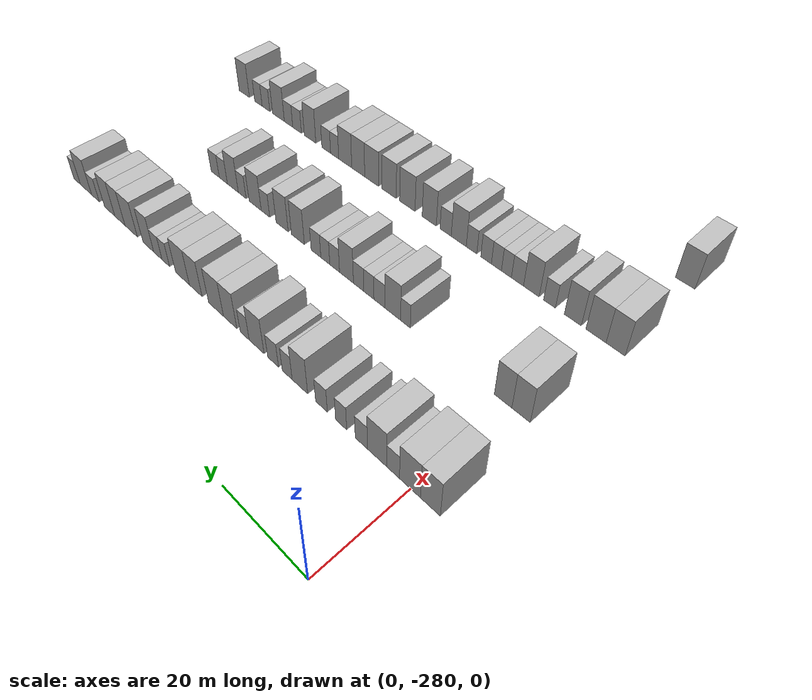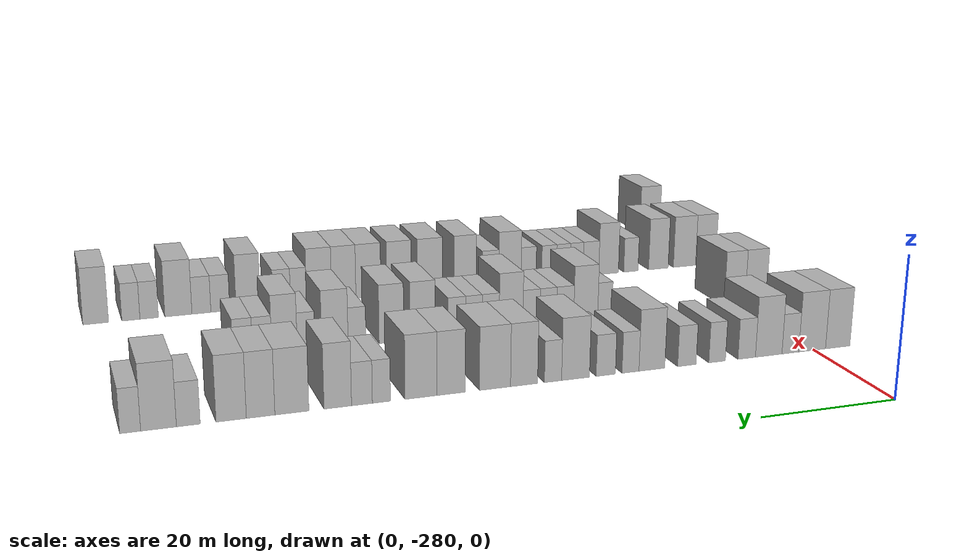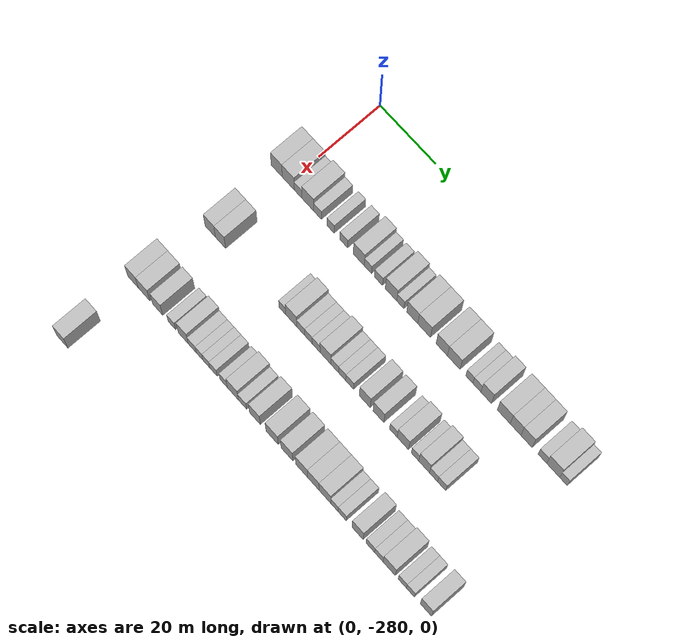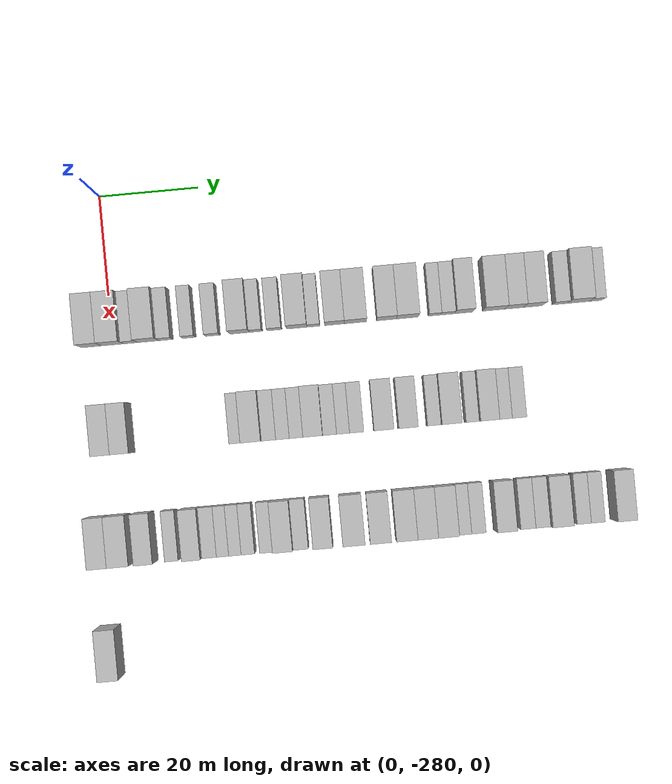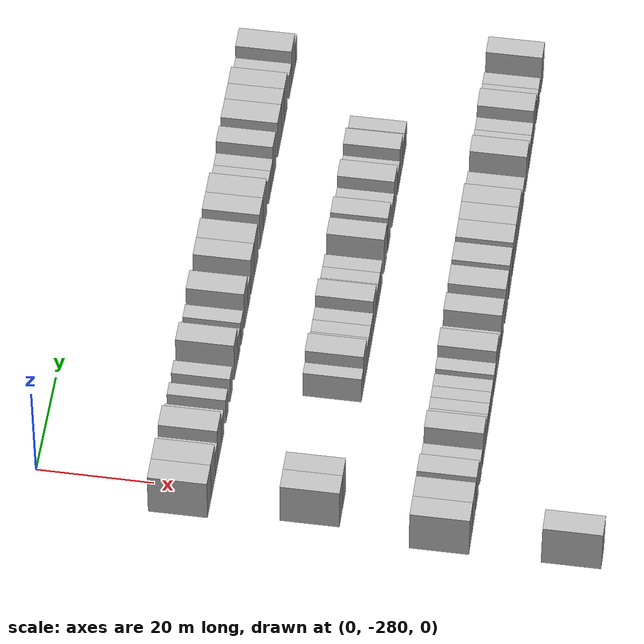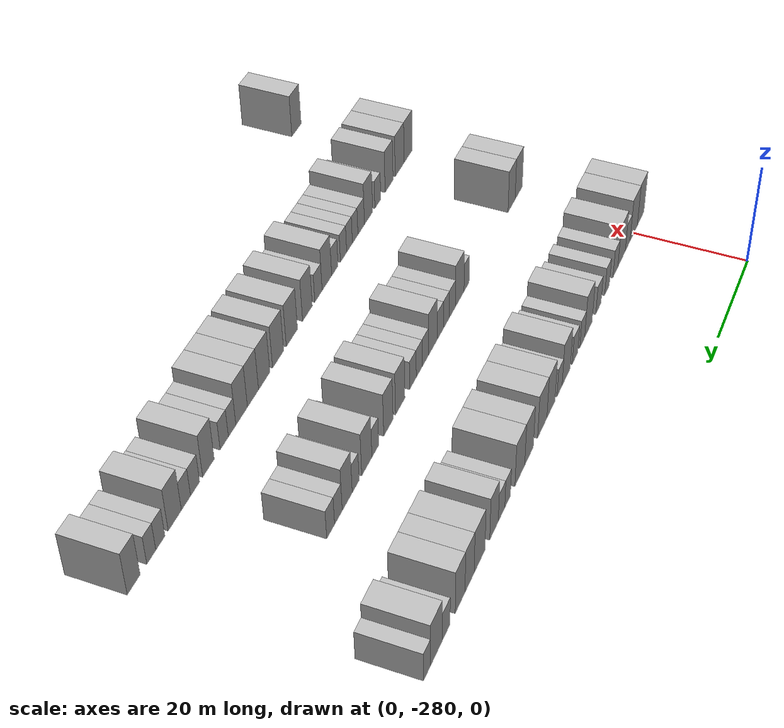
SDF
<sdf version="1.6">
 <world name="default">
  <model name="building_25">
   <static>1</static>
   <pose>25.0000 -284.0608 0 0.000000 0.000000 0.000000</pose>
   <link name="link">
    <pose>0 0 4.50 0 0 0</pose>
    <collision name="collision"><geometry><box><size>10.0000 4.0762 9.0000</size></box></geometry></collision>
    <visual name="visual">
     <cast_shadows>0</cast_shadows>
     <geometry><box><size>10.0000 4.0762 9.0000</size></box></geometry>
     <material>
      <script>
       <uri>model://HANNAS_wall/materials/scripts</uri>
       <uri>model://HANNAS_wall/materials/textures</uri>
       <name>vrc/HANNAS_wall</name>
      </script>
     </material>
    </visual>
   </link>
  </model>
  <model name="building_26">
   <static>1</static>
   <pose>25.0000 -279.8087 0 0.000000 0.000000 0.000000</pose>
   <link name="link">
    <pose>0 0 4.50 0 0 0</pose>
    <collision name="collision"><geometry><box><size>10.0000 4.4280 9.0000</size></box></geometry></collision>
    <visual name="visual">
     <cast_shadows>0</cast_shadows>
     <geometry><box><size>10.0000 4.4280 9.0000</size></box></geometry>
     <material>
      <script>
       <uri>model://HANNAS_wall/materials/scripts</uri>
       <uri>model://HANNAS_wall/materials/textures</uri>
       <name>vrc/HANNAS_wall</name>
      </script>
     </material>
    </visual>
   </link>
  </model>
  <model name="building_27">
   <static>1</static>
   <pose>25.0000 -276.2151 0 0.000000 0.000000 0.000000</pose>
   <link name="link">
    <pose>0 0 3.00 0 0 0</pose>
    <collision name="collision"><geometry><box><size>10.0000 2.7592 6.0000</size></box></geometry></collision>
    <visual name="visual">
     <cast_shadows>0</cast_shadows>
     <geometry><box><size>10.0000 2.7592 6.0000</size></box></geometry>
     <material>
      <script>
       <uri>model://HANNAS_wall/materials/scripts</uri>
       <uri>model://HANNAS_wall/materials/textures</uri>
       <name>vrc/HANNAS_wall</name>
      </script>
     </material>
    </visual>
   </link>
  </model>
  <model name="building_28">
   <static>1</static>
   <pose>25.0000 -272.6816 0 0.000000 0.000000 0.000000</pose>
   <link name="link">
    <pose>0 0 4.50 0 0 0</pose>
    <collision name="collision"><geometry><box><size>10.0000 4.3078 9.0000</size></box></geometry></collision>
    <visual name="visual">
     <cast_shadows>0</cast_shadows>
     <geometry><box><size>10.0000 4.3078 9.0000</size></box></geometry>
     <material>
      <script>
       <uri>model://HANNAS_wall/materials/scripts</uri>
       <uri>model://HANNAS_wall/materials/textures</uri>
       <name>vrc/HANNAS_wall</name>
      </script>
     </material>
    </visual>
   </link>
  </model>
  <model name="building_29">
   <static>1</static>
   <pose>25.0000 -269.1227 0 0.000000 0.000000 0.000000</pose>
   <link name="link">
    <pose>0 0 3.00 0 0 0</pose>
    <collision name="collision"><geometry><box><size>10.0000 2.8099 6.0000</size></box></geometry></collision>
    <visual name="visual">
     <cast_shadows>0</cast_shadows>
     <geometry><box><size>10.0000 2.8099 6.0000</size></box></geometry>
     <material>
      <script>
       <uri>model://HANNAS_wall/materials/scripts</uri>
       <uri>model://HANNAS_wall/materials/textures</uri>
       <name>vrc/HANNAS_wall</name>
      </script>
     </material>
    </visual>
   </link>
  </model>
  <model name="building_30">
   <static>1</static>
   <pose>25.0000 -264.4025 0 0.000000 0.000000 0.000000</pose>
   <link name="link">
    <pose>0 0 3.00 0 0 0</pose>
    <collision name="collision"><geometry><box><size>10.0000 2.6304 6.0000</size></box></geometry></collision>
    <visual name="visual">
     <cast_shadows>0</cast_shadows>
     <geometry><box><size>10.0000 2.6304 6.0000</size></box></geometry>
     <material>
      <script>
       <uri>model://HANNAS_wall/materials/scripts</uri>
       <uri>model://HANNAS_wall/materials/textures</uri>
       <name>vrc/HANNAS_wall</name>
      </script>
     </material>
    </visual>
   </link>
  </model>
  <model name="building_31">
   <static>1</static>
   <pose>25.0000 -259.6465 0 0.000000 0.000000 0.000000</pose>
   <link name="link">
    <pose>0 0 3.00 0 0 0</pose>
    <collision name="collision"><geometry><box><size>10.0000 2.8817 6.0000</size></box></geometry></collision>
    <visual name="visual">
     <cast_shadows>0</cast_shadows>
     <geometry><box><size>10.0000 2.8817 6.0000</size></box></geometry>
     <material>
      <script>
       <uri>model://HANNAS_wall/materials/scripts</uri>
       <uri>model://HANNAS_wall/materials/textures</uri>
       <name>vrc/HANNAS_wall</name>
      </script>
     </material>
    </visual>
   </link>
  </model>
  <model name="building_32">
   <static>1</static>
   <pose>25.0000 -254.2208 0 0.000000 0.000000 0.000000</pose>
   <link name="link">
    <pose>0 0 4.50 0 0 0</pose>
    <collision name="collision"><geometry><box><size>10.0000 3.9698 9.0000</size></box></geometry></collision>
    <visual name="visual">
     <cast_shadows>0</cast_shadows>
     <geometry><box><size>10.0000 3.9698 9.0000</size></box></geometry>
     <material>
      <script>
       <uri>model://HANNAS_wall/materials/scripts</uri>
       <uri>model://HANNAS_wall/materials/textures</uri>
       <name>vrc/HANNAS_wall</name>
      </script>
     </material>
    </visual>
   </link>
  </model>
  <model name="building_33">
   <static>1</static>
   <pose>25.0000 -250.9463 0 0.000000 0.000000 0.000000</pose>
   <link name="link">
    <pose>0 0 3.00 0 0 0</pose>
    <collision name="collision"><geometry><box><size>10.0000 2.5792 6.0000</size></box></geometry></collision>
    <visual name="visual">
     <cast_shadows>0</cast_shadows>
     <geometry><box><size>10.0000 2.5792 6.0000</size></box></geometry>
     <material>
      <script>
       <uri>model://HANNAS_wall/materials/scripts</uri>
       <uri>model://HANNAS_wall/materials/textures</uri>
       <name>vrc/HANNAS_wall</name>
      </script>
     </material>
    </visual>
   </link>
  </model>
  <model name="building_34">
   <static>1</static>
   <pose>25.0000 -247.2050 0 0.000000 0.000000 0.000000</pose>
   <link name="link">
    <pose>0 0 3.00 0 0 0</pose>
    <collision name="collision"><geometry><box><size>10.0000 2.9035 6.0000</size></box></geometry></collision>
    <visual name="visual">
     <cast_shadows>0</cast_shadows>
     <geometry><box><size>10.0000 2.9035 6.0000</size></box></geometry>
     <material>
      <script>
       <uri>model://HANNAS_wall/materials/scripts</uri>
       <uri>model://HANNAS_wall/materials/textures</uri>
       <name>vrc/HANNAS_wall</name>
      </script>
     </material>
    </visual>
   </link>
  </model>
  <model name="building_35">
   <static>1</static>
   <pose>25.0000 -242.6884 0 0.000000 0.000000 0.000000</pose>
   <link name="link">
    <pose>0 0 4.50 0 0 0</pose>
    <collision name="collision"><geometry><box><size>10.0000 4.1297 9.0000</size></box></geometry></collision>
    <visual name="visual">
     <cast_shadows>0</cast_shadows>
     <geometry><box><size>10.0000 4.1297 9.0000</size></box></geometry>
     <material>
      <script>
       <uri>model://HANNAS_wall/materials/scripts</uri>
       <uri>model://HANNAS_wall/materials/textures</uri>
       <name>vrc/HANNAS_wall</name>
      </script>
     </material>
    </visual>
   </link>
  </model>
  <model name="building_36">
   <static>1</static>
   <pose>25.0000 -239.3591 0 0.000000 0.000000 0.000000</pose>
   <link name="link">
    <pose>0 0 3.00 0 0 0</pose>
    <collision name="collision"><geometry><box><size>10.0000 2.5288 6.0000</size></box></geometry></collision>
    <visual name="visual">
     <cast_shadows>0</cast_shadows>
     <geometry><box><size>10.0000 2.5288 6.0000</size></box></geometry>
     <material>
      <script>
       <uri>model://HANNAS_wall/materials/scripts</uri>
       <uri>model://HANNAS_wall/materials/textures</uri>
       <name>vrc/HANNAS_wall</name>
      </script>
     </material>
    </visual>
   </link>
  </model>
  <model name="building_37">
   <static>1</static>
   <pose>25.0000 -235.1338 0 0.000000 0.000000 0.000000</pose>
   <link name="link">
    <pose>0 0 4.50 0 0 0</pose>
    <collision name="collision"><geometry><box><size>10.0000 3.9217 9.0000</size></box></geometry></collision>
    <visual name="visual">
     <cast_shadows>0</cast_shadows>
     <geometry><box><size>10.0000 3.9217 9.0000</size></box></geometry>
     <material>
      <script>
       <uri>model://HANNAS_wall/materials/scripts</uri>
       <uri>model://HANNAS_wall/materials/textures</uri>
       <name>vrc/HANNAS_wall</name>
      </script>
     </material>
    </visual>
   </link>
  </model>
  <model name="building_38">
   <static>1</static>
   <pose>25.0000 -230.9459 0 0.000000 0.000000 0.000000</pose>
   <link name="link">
    <pose>0 0 4.50 0 0 0</pose>
    <collision name="collision"><geometry><box><size>10.0000 4.4541 9.0000</size></box></geometry></collision>
    <visual name="visual">
     <cast_shadows>0</cast_shadows>
     <geometry><box><size>10.0000 4.4541 9.0000</size></box></geometry>
     <material>
      <script>
       <uri>model://HANNAS_wall/materials/scripts</uri>
       <uri>model://HANNAS_wall/materials/textures</uri>
       <name>vrc/HANNAS_wall</name>
      </script>
     </material>
    </visual>
   </link>
  </model>
  <model name="building_39">
   <static>1</static>
   <pose>25.0000 -224.7282 0 0.000000 0.000000 0.000000</pose>
   <link name="link">
    <pose>0 0 4.50 0 0 0</pose>
    <collision name="collision"><geometry><box><size>10.0000 3.9813 9.0000</size></box></geometry></collision>
    <visual name="visual">
     <cast_shadows>0</cast_shadows>
     <geometry><box><size>10.0000 3.9813 9.0000</size></box></geometry>
     <material>
      <script>
       <uri>model://HANNAS_wall/materials/scripts</uri>
       <uri>model://HANNAS_wall/materials/textures</uri>
       <name>vrc/HANNAS_wall</name>
      </script>
     </material>
    </visual>
   </link>
  </model>
  <model name="building_40">
   <static>1</static>
   <pose>25.0000 -220.5178 0 0.000000 0.000000 0.000000</pose>
   <link name="link">
    <pose>0 0 4.50 0 0 0</pose>
    <collision name="collision"><geometry><box><size>10.0000 4.4395 9.0000</size></box></geometry></collision>
    <visual name="visual">
     <cast_shadows>0</cast_shadows>
     <geometry><box><size>10.0000 4.4395 9.0000</size></box></geometry>
     <material>
      <script>
       <uri>model://HANNAS_wall/materials/scripts</uri>
       <uri>model://HANNAS_wall/materials/textures</uri>
       <name>vrc/HANNAS_wall</name>
      </script>
     </material>
    </visual>
   </link>
  </model>
  <model name="building_41">
   <static>1</static>
   <pose>25.0000 -215.0652 0 0.000000 0.000000 0.000000</pose>
   <link name="link">
    <pose>0 0 3.00 0 0 0</pose>
    <collision name="collision"><geometry><box><size>10.0000 2.4658 6.0000</size></box></geometry></collision>
    <visual name="visual">
     <cast_shadows>0</cast_shadows>
     <geometry><box><size>10.0000 2.4658 6.0000</size></box></geometry>
     <material>
      <script>
       <uri>model://HANNAS_wall/materials/scripts</uri>
       <uri>model://HANNAS_wall/materials/textures</uri>
       <name>vrc/HANNAS_wall</name>
      </script>
     </material>
    </visual>
   </link>
  </model>
  <model name="building_42">
   <static>1</static>
   <pose>25.0000 -212.4221 0 0.000000 0.000000 0.000000</pose>
   <link name="link">
    <pose>0 0 3.00 0 0 0</pose>
    <collision name="collision"><geometry><box><size>10.0000 2.8204 6.0000</size></box></geometry></collision>
    <visual name="visual">
     <cast_shadows>0</cast_shadows>
     <geometry><box><size>10.0000 2.8204 6.0000</size></box></geometry>
     <material>
      <script>
       <uri>model://HANNAS_wall/materials/scripts</uri>
       <uri>model://HANNAS_wall/materials/textures</uri>
       <name>vrc/HANNAS_wall</name>
      </script>
     </material>
    </visual>
   </link>
  </model>
  <model name="building_43">
   <static>1</static>
   <pose>25.0000 -209.1711 0 0.000000 0.000000 0.000000</pose>
   <link name="link">
    <pose>0 0 4.50 0 0 0</pose>
    <collision name="collision"><geometry><box><size>10.0000 3.6816 9.0000</size></box></geometry></collision>
    <visual name="visual">
     <cast_shadows>0</cast_shadows>
     <geometry><box><size>10.0000 3.6816 9.0000</size></box></geometry>
     <material>
      <script>
       <uri>model://HANNAS_wall/materials/scripts</uri>
       <uri>model://HANNAS_wall/materials/textures</uri>
       <name>vrc/HANNAS_wall</name>
      </script>
     </material>
    </visual>
   </link>
  </model>
  <model name="building_44">
   <static>1</static>
   <pose>25.0000 -203.0987 0 0.000000 0.000000 0.000000</pose>
   <link name="link">
    <pose>0 0 4.50 0 0 0</pose>
    <collision name="collision"><geometry><box><size>10.0000 4.4633 9.0000</size></box></geometry></collision>
    <visual name="visual">
     <cast_shadows>0</cast_shadows>
     <geometry><box><size>10.0000 4.4633 9.0000</size></box></geometry>
     <material>
      <script>
       <uri>model://HANNAS_wall/materials/scripts</uri>
       <uri>model://HANNAS_wall/materials/textures</uri>
       <name>vrc/HANNAS_wall</name>
      </script>
     </material>
    </visual>
   </link>
  </model>
  <model name="building_45">
   <static>1</static>
   <pose>25.0000 -199.0176 0 0.000000 0.000000 0.000000</pose>
   <link name="link">
    <pose>0 0 4.50 0 0 0</pose>
    <collision name="collision"><geometry><box><size>10.0000 3.6988 9.0000</size></box></geometry></collision>
    <visual name="visual">
     <cast_shadows>0</cast_shadows>
     <geometry><box><size>10.0000 3.6988 9.0000</size></box></geometry>
     <material>
      <script>
       <uri>model://HANNAS_wall/materials/scripts</uri>
       <uri>model://HANNAS_wall/materials/textures</uri>
       <name>vrc/HANNAS_wall</name>
      </script>
     </material>
    </visual>
   </link>
  </model>
  <model name="building_46">
   <static>1</static>
   <pose>25.0000 -195.2268 0 0.000000 0.000000 0.000000</pose>
   <link name="link">
    <pose>0 0 4.50 0 0 0</pose>
    <collision name="collision"><geometry><box><size>10.0000 3.8828 9.0000</size></box></geometry></collision>
    <visual name="visual">
     <cast_shadows>0</cast_shadows>
     <geometry><box><size>10.0000 3.8828 9.0000</size></box></geometry>
     <material>
      <script>
       <uri>model://HANNAS_wall/materials/scripts</uri>
       <uri>model://HANNAS_wall/materials/textures</uri>
       <name>vrc/HANNAS_wall</name>
      </script>
     </material>
    </visual>
   </link>
  </model>
  <model name="building_47">
   <static>1</static>
   <pose>25.0000 -189.7896 0 0.000000 0.000000 0.000000</pose>
   <link name="link">
    <pose>0 0 3.00 0 0 0</pose>
    <collision name="collision"><geometry><box><size>10.0000 2.9916 6.0000</size></box></geometry></collision>
    <visual name="visual">
     <cast_shadows>0</cast_shadows>
     <geometry><box><size>10.0000 2.9916 6.0000</size></box></geometry>
     <material>
      <script>
       <uri>model://HANNAS_wall/materials/scripts</uri>
       <uri>model://HANNAS_wall/materials/textures</uri>
       <name>vrc/HANNAS_wall</name>
      </script>
     </material>
    </visual>
   </link>
  </model>
  <model name="building_48">
   <static>1</static>
   <pose>25.0000 -186.0740 0 0.000000 0.000000 0.000000</pose>
   <link name="link">
    <pose>0 0 4.50 0 0 0</pose>
    <collision name="collision"><geometry><box><size>10.0000 4.4397 9.0000</size></box></geometry></collision>
    <visual name="visual">
     <cast_shadows>0</cast_shadows>
     <geometry><box><size>10.0000 4.4397 9.0000</size></box></geometry>
     <material>
      <script>
       <uri>model://HANNAS_wall/materials/scripts</uri>
       <uri>model://HANNAS_wall/materials/textures</uri>
       <name>vrc/HANNAS_wall</name>
      </script>
     </material>
    </visual>
   </link>
  </model>
  <model name="building_49">
   <static>1</static>
   <pose>25.0000 -182.5660 0 0.000000 0.000000 0.000000</pose>
   <link name="link">
    <pose>0 0 3.00 0 0 0</pose>
    <collision name="collision"><geometry><box><size>10.0000 2.5763 6.0000</size></box></geometry></collision>
    <visual name="visual">
     <cast_shadows>0</cast_shadows>
     <geometry><box><size>10.0000 2.5763 6.0000</size></box></geometry>
     <material>
      <script>
       <uri>model://HANNAS_wall/materials/scripts</uri>
       <uri>model://HANNAS_wall/materials/textures</uri>
       <name>vrc/HANNAS_wall</name>
      </script>
     </material>
    </visual>
   </link>
  </model>
  <model name="building_220">
   <static>1</static>
   <pose>47.0000 -283.0484 0 0.000000 0.000000 0.000000</pose>
   <link name="link">
    <pose>0 0 4.50 0 0 0</pose>
    <collision name="collision"><geometry><box><size>10.0000 3.8229 9.0000</size></box></geometry></collision>
    <visual name="visual">
     <cast_shadows>0</cast_shadows>
     <geometry><box><size>10.0000 3.8229 9.0000</size></box></geometry>
     <material>
      <script>
       <uri>model://HANNAS_wall/materials/scripts</uri>
       <uri>model://HANNAS_wall/materials/textures</uri>
       <name>vrc/HANNAS_wall</name>
      </script>
     </material>
    </visual>
   </link>
  </model>
  <model name="building_221">
   <static>1</static>
   <pose>47.0000 -279.2758 0 0.000000 0.000000 0.000000</pose>
   <link name="link">
    <pose>0 0 4.50 0 0 0</pose>
    <collision name="collision"><geometry><box><size>10.0000 3.7223 9.0000</size></box></geometry></collision>
    <visual name="visual">
     <cast_shadows>0</cast_shadows>
     <geometry><box><size>10.0000 3.7223 9.0000</size></box></geometry>
     <material>
      <script>
       <uri>model://HANNAS_wall/materials/scripts</uri>
       <uri>model://HANNAS_wall/materials/textures</uri>
       <name>vrc/HANNAS_wall</name>
      </script>
     </material>
    </visual>
   </link>
  </model>
  <model name="building_222">
   <static>1</static>
   <pose>47.0000 -256.7821 0 0.000000 0.000000 0.000000</pose>
   <link name="link">
    <pose>0 0 3.00 0 0 0</pose>
    <collision name="collision"><geometry><box><size>10.0000 2.4217 6.0000</size></box></geometry></collision>
    <visual name="visual">
     <cast_shadows>0</cast_shadows>
     <geometry><box><size>10.0000 2.4217 6.0000</size></box></geometry>
     <material>
      <script>
       <uri>model://HANNAS_wall/materials/scripts</uri>
       <uri>model://HANNAS_wall/materials/textures</uri>
       <name>vrc/HANNAS_wall</name>
      </script>
     </material>
    </visual>
   </link>
  </model>
  <model name="building_223">
   <static>1</static>
   <pose>47.0000 -253.5736 0 0.000000 0.000000 0.000000</pose>
   <link name="link">
    <pose>0 0 4.50 0 0 0</pose>
    <collision name="collision"><geometry><box><size>10.0000 3.9954 9.0000</size></box></geometry></collision>
    <visual name="visual">
     <cast_shadows>0</cast_shadows>
     <geometry><box><size>10.0000 3.9954 9.0000</size></box></geometry>
     <material>
      <script>
       <uri>model://HANNAS_wall/materials/scripts</uri>
       <uri>model://HANNAS_wall/materials/textures</uri>
       <name>vrc/HANNAS_wall</name>
      </script>
     </material>
    </visual>
   </link>
  </model>
  <model name="building_224">
   <static>1</static>
   <pose>47.0000 -250.1588 0 0.000000 0.000000 0.000000</pose>
   <link name="link">
    <pose>0 0 3.00 0 0 0</pose>
    <collision name="collision"><geometry><box><size>10.0000 2.8342 6.0000</size></box></geometry></collision>
    <visual name="visual">
     <cast_shadows>0</cast_shadows>
     <geometry><box><size>10.0000 2.8342 6.0000</size></box></geometry>
     <material>
      <script>
       <uri>model://HANNAS_wall/materials/scripts</uri>
       <uri>model://HANNAS_wall/materials/textures</uri>
       <name>vrc/HANNAS_wall</name>
      </script>
     </material>
    </visual>
   </link>
  </model>
  <model name="building_225">
   <static>1</static>
   <pose>47.0000 -247.3999 0 0.000000 0.000000 0.000000</pose>
   <link name="link">
    <pose>0 0 3.00 0 0 0</pose>
    <collision name="collision"><geometry><box><size>10.0000 2.6835 6.0000</size></box></geometry></collision>
    <visual name="visual">
     <cast_shadows>0</cast_shadows>
     <geometry><box><size>10.0000 2.6835 6.0000</size></box></geometry>
     <material>
      <script>
       <uri>model://HANNAS_wall/materials/scripts</uri>
       <uri>model://HANNAS_wall/materials/textures</uri>
       <name>vrc/HANNAS_wall</name>
      </script>
     </material>
    </visual>
   </link>
  </model>
  <model name="building_226">
   <static>1</static>
   <pose>47.0000 -244.6586 0 0.000000 0.000000 0.000000</pose>
   <link name="link">
    <pose>0 0 3.00 0 0 0</pose>
    <collision name="collision"><geometry><box><size>10.0000 2.7991 6.0000</size></box></geometry></collision>
    <visual name="visual">
     <cast_shadows>0</cast_shadows>
     <geometry><box><size>10.0000 2.7991 6.0000</size></box></geometry>
     <material>
      <script>
       <uri>model://HANNAS_wall/materials/scripts</uri>
       <uri>model://HANNAS_wall/materials/textures</uri>
       <name>vrc/HANNAS_wall</name>
      </script>
     </material>
    </visual>
   </link>
  </model>
  <model name="building_227">
   <static>1</static>
   <pose>47.0000 -241.3442 0 0.000000 0.000000 0.000000</pose>
   <link name="link">
    <pose>0 0 4.50 0 0 0</pose>
    <collision name="collision"><geometry><box><size>10.0000 3.8298 9.0000</size></box></geometry></collision>
    <visual name="visual">
     <cast_shadows>0</cast_shadows>
     <geometry><box><size>10.0000 3.8298 9.0000</size></box></geometry>
     <material>
      <script>
       <uri>model://HANNAS_wall/materials/scripts</uri>
       <uri>model://HANNAS_wall/materials/textures</uri>
       <name>vrc/HANNAS_wall</name>
      </script>
     </material>
    </visual>
   </link>
  </model>
  <model name="building_228">
   <static>1</static>
   <pose>47.0000 -238.0636 0 0.000000 0.000000 0.000000</pose>
   <link name="link">
    <pose>0 0 3.00 0 0 0</pose>
    <collision name="collision"><geometry><box><size>10.0000 2.7313 6.0000</size></box></geometry></collision>
    <visual name="visual">
     <cast_shadows>0</cast_shadows>
     <geometry><box><size>10.0000 2.7313 6.0000</size></box></geometry>
     <material>
      <script>
       <uri>model://HANNAS_wall/materials/scripts</uri>
       <uri>model://HANNAS_wall/materials/textures</uri>
       <name>vrc/HANNAS_wall</name>
      </script>
     </material>
    </visual>
   </link>
  </model>
  <model name="building_229">
   <static>1</static>
   <pose>47.0000 -235.4135 0 0.000000 0.000000 0.000000</pose>
   <link name="link">
    <pose>0 0 3.00 0 0 0</pose>
    <collision name="collision"><geometry><box><size>10.0000 2.5689 6.0000</size></box></geometry></collision>
    <visual name="visual">
     <cast_shadows>0</cast_shadows>
     <geometry><box><size>10.0000 2.5689 6.0000</size></box></geometry>
     <material>
      <script>
       <uri>model://HANNAS_wall/materials/scripts</uri>
       <uri>model://HANNAS_wall/materials/textures</uri>
       <name>vrc/HANNAS_wall</name>
      </script>
     </material>
    </visual>
   </link>
  </model>
  <model name="building_230">
   <static>1</static>
   <pose>47.0000 -232.7214 0 0.000000 0.000000 0.000000</pose>
   <link name="link">
    <pose>0 0 3.00 0 0 0</pose>
    <collision name="collision"><geometry><box><size>10.0000 2.8154 6.0000</size></box></geometry></collision>
    <visual name="visual">
     <cast_shadows>0</cast_shadows>
     <geometry><box><size>10.0000 2.8154 6.0000</size></box></geometry>
     <material>
      <script>
       <uri>model://HANNAS_wall/materials/scripts</uri>
       <uri>model://HANNAS_wall/materials/textures</uri>
       <name>vrc/HANNAS_wall</name>
      </script>
     </material>
    </visual>
   </link>
  </model>
  <model name="building_231">
   <static>1</static>
   <pose>47.0000 -227.3749 0 0.000000 0.000000 0.000000</pose>
   <link name="link">
    <pose>0 0 4.50 0 0 0</pose>
    <collision name="collision"><geometry><box><size>10.0000 3.8776 9.0000</size></box></geometry></collision>
    <visual name="visual">
     <cast_shadows>0</cast_shadows>
     <geometry><box><size>10.0000 3.8776 9.0000</size></box></geometry>
     <material>
      <script>
       <uri>model://HANNAS_wall/materials/scripts</uri>
       <uri>model://HANNAS_wall/materials/textures</uri>
       <name>vrc/HANNAS_wall</name>
      </script>
     </material>
    </visual>
   </link>
  </model>
  <model name="building_232">
   <static>1</static>
   <pose>47.0000 -222.5548 0 0.000000 0.000000 0.000000</pose>
   <link name="link">
    <pose>0 0 4.50 0 0 0</pose>
    <collision name="collision"><geometry><box><size>10.0000 3.7626 9.0000</size></box></geometry></collision>
    <visual name="visual">
     <cast_shadows>0</cast_shadows>
     <geometry><box><size>10.0000 3.7626 9.0000</size></box></geometry>
     <material>
      <script>
       <uri>model://HANNAS_wall/materials/scripts</uri>
       <uri>model://HANNAS_wall/materials/textures</uri>
       <name>vrc/HANNAS_wall</name>
      </script>
     </material>
    </visual>
   </link>
  </model>
  <model name="building_233">
   <static>1</static>
   <pose>47.0000 -217.3299 0 0.000000 0.000000 0.000000</pose>
   <link name="link">
    <pose>0 0 3.00 0 0 0</pose>
    <collision name="collision"><geometry><box><size>10.0000 2.6874 6.0000</size></box></geometry></collision>
    <visual name="visual">
     <cast_shadows>0</cast_shadows>
     <geometry><box><size>10.0000 2.6874 6.0000</size></box></geometry>
     <material>
      <script>
       <uri>model://HANNAS_wall/materials/scripts</uri>
       <uri>model://HANNAS_wall/materials/textures</uri>
       <name>vrc/HANNAS_wall</name>
      </script>
     </material>
    </visual>
   </link>
  </model>
  <model name="building_234">
   <static>1</static>
   <pose>47.0000 -214.0145 0 0.000000 0.000000 0.000000</pose>
   <link name="link">
    <pose>0 0 4.50 0 0 0</pose>
    <collision name="collision"><geometry><box><size>10.0000 3.9435 9.0000</size></box></geometry></collision>
    <visual name="visual">
     <cast_shadows>0</cast_shadows>
     <geometry><box><size>10.0000 3.9435 9.0000</size></box></geometry>
     <material>
      <script>
       <uri>model://HANNAS_wall/materials/scripts</uri>
       <uri>model://HANNAS_wall/materials/textures</uri>
       <name>vrc/HANNAS_wall</name>
      </script>
     </material>
    </visual>
   </link>
  </model>
  <model name="building_235">
   <static>1</static>
   <pose>47.0000 -209.7371 0 0.000000 0.000000 0.000000</pose>
   <link name="link">
    <pose>0 0 3.00 0 0 0</pose>
    <collision name="collision"><geometry><box><size>10.0000 2.6113 6.0000</size></box></geometry></collision>
    <visual name="visual">
     <cast_shadows>0</cast_shadows>
     <geometry><box><size>10.0000 2.6113 6.0000</size></box></geometry>
     <material>
      <script>
       <uri>model://HANNAS_wall/materials/scripts</uri>
       <uri>model://HANNAS_wall/materials/textures</uri>
       <name>vrc/HANNAS_wall</name>
      </script>
     </material>
    </visual>
   </link>
  </model>
  <model name="building_236">
   <static>1</static>
   <pose>47.0000 -206.5710 0 0.000000 0.000000 0.000000</pose>
   <link name="link">
    <pose>0 0 4.50 0 0 0</pose>
    <collision name="collision"><geometry><box><size>10.0000 3.7208 9.0000</size></box></geometry></collision>
    <visual name="visual">
     <cast_shadows>0</cast_shadows>
     <geometry><box><size>10.0000 3.7208 9.0000</size></box></geometry>
     <material>
      <script>
       <uri>model://HANNAS_wall/materials/scripts</uri>
       <uri>model://HANNAS_wall/materials/textures</uri>
       <name>vrc/HANNAS_wall</name>
      </script>
     </material>
    </visual>
   </link>
  </model>
  <model name="building_237">
   <static>1</static>
   <pose>47.0000 -203.3186 0 0.000000 0.000000 0.000000</pose>
   <link name="link">
    <pose>0 0 3.00 0 0 0</pose>
    <collision name="collision"><geometry><box><size>10.0000 2.7840 6.0000</size></box></geometry></collision>
    <visual name="visual">
     <cast_shadows>0</cast_shadows>
     <geometry><box><size>10.0000 2.7840 6.0000</size></box></geometry>
     <material>
      <script>
       <uri>model://HANNAS_wall/materials/scripts</uri>
       <uri>model://HANNAS_wall/materials/textures</uri>
       <name>vrc/HANNAS_wall</name>
      </script>
     </material>
    </visual>
   </link>
  </model>
  <model name="building_238">
   <static>1</static>
   <pose>47.0000 -200.5041 0 0.000000 0.000000 0.000000</pose>
   <link name="link">
    <pose>0 0 3.00 0 0 0</pose>
    <collision name="collision"><geometry><box><size>10.0000 2.8450 6.0000</size></box></geometry></collision>
    <visual name="visual">
     <cast_shadows>0</cast_shadows>
     <geometry><box><size>10.0000 2.8450 6.0000</size></box></geometry>
     <material>
      <script>
       <uri>model://HANNAS_wall/materials/scripts</uri>
       <uri>model://HANNAS_wall/materials/textures</uri>
       <name>vrc/HANNAS_wall</name>
      </script>
     </material>
    </visual>
   </link>
  </model>
  <model name="building_413">
   <static>1</static>
   <pose>69.0000 -285.6919 0 0.000000 0.000000 0.000000</pose>
   <link name="link">
    <pose>0 0 4.50 0 0 0</pose>
    <collision name="collision"><geometry><box><size>10.0000 3.9387 9.0000</size></box></geometry></collision>
    <visual name="visual">
     <cast_shadows>0</cast_shadows>
     <geometry><box><size>10.0000 3.9387 9.0000</size></box></geometry>
     <material>
      <script>
       <uri>model://HANNAS_wall/materials/scripts</uri>
       <uri>model://HANNAS_wall/materials/textures</uri>
       <name>vrc/HANNAS_wall</name>
      </script>
     </material>
    </visual>
   </link>
  </model>
  <model name="building_414">
   <static>1</static>
   <pose>69.0000 -281.5900 0 0.000000 0.000000 0.000000</pose>
   <link name="link">
    <pose>0 0 4.50 0 0 0</pose>
    <collision name="collision"><geometry><box><size>10.0000 4.2651 9.0000</size></box></geometry></collision>
    <visual name="visual">
     <cast_shadows>0</cast_shadows>
     <geometry><box><size>10.0000 4.2651 9.0000</size></box></geometry>
     <material>
      <script>
       <uri>model://HANNAS_wall/materials/scripts</uri>
       <uri>model://HANNAS_wall/materials/textures</uri>
       <name>vrc/HANNAS_wall</name>
      </script>
     </material>
    </visual>
   </link>
  </model>
  <model name="building_415">
   <static>1</static>
   <pose>69.0000 -276.5949 0 0.000000 0.000000 0.000000</pose>
   <link name="link">
    <pose>0 0 4.50 0 0 0</pose>
    <collision name="collision"><geometry><box><size>10.0000 3.7249 9.0000</size></box></geometry></collision>
    <visual name="visual">
     <cast_shadows>0</cast_shadows>
     <geometry><box><size>10.0000 3.7249 9.0000</size></box></geometry>
     <material>
      <script>
       <uri>model://HANNAS_wall/materials/scripts</uri>
       <uri>model://HANNAS_wall/materials/textures</uri>
       <name>vrc/HANNAS_wall</name>
      </script>
     </material>
    </visual>
   </link>
  </model>
  <model name="building_416">
   <static>1</static>
   <pose>69.0000 -271.3870 0 0.000000 0.000000 0.000000</pose>
   <link name="link">
    <pose>0 0 3.00 0 0 0</pose>
    <collision name="collision"><geometry><box><size>10.0000 2.6909 6.0000</size></box></geometry></collision>
    <visual name="visual">
     <cast_shadows>0</cast_shadows>
     <geometry><box><size>10.0000 2.6909 6.0000</size></box></geometry>
     <material>
      <script>
       <uri>model://HANNAS_wall/materials/scripts</uri>
       <uri>model://HANNAS_wall/materials/textures</uri>
       <name>vrc/HANNAS_wall</name>
      </script>
     </material>
    </visual>
   </link>
  </model>
  <model name="building_417">
   <static>1</static>
   <pose>69.0000 -267.2125 0 0.000000 0.000000 0.000000</pose>
   <link name="link">
    <pose>0 0 4.50 0 0 0</pose>
    <collision name="collision"><geometry><box><size>10.0000 3.6582 9.0000</size></box></geometry></collision>
    <visual name="visual">
     <cast_shadows>0</cast_shadows>
     <geometry><box><size>10.0000 3.6582 9.0000</size></box></geometry>
     <material>
      <script>
       <uri>model://HANNAS_wall/materials/scripts</uri>
       <uri>model://HANNAS_wall/materials/textures</uri>
       <name>vrc/HANNAS_wall</name>
      </script>
     </material>
    </visual>
   </link>
  </model>
  <model name="building_418">
   <static>1</static>
   <pose>69.0000 -263.9321 0 0.000000 0.000000 0.000000</pose>
   <link name="link">
    <pose>0 0 3.00 0 0 0</pose>
    <collision name="collision"><geometry><box><size>10.0000 2.9025 6.0000</size></box></geometry></collision>
    <visual name="visual">
     <cast_shadows>0</cast_shadows>
     <geometry><box><size>10.0000 2.9025 6.0000</size></box></geometry>
     <material>
      <script>
       <uri>model://HANNAS_wall/materials/scripts</uri>
       <uri>model://HANNAS_wall/materials/textures</uri>
       <name>vrc/HANNAS_wall</name>
      </script>
     </material>
    </visual>
   </link>
  </model>
  <model name="building_419">
   <static>1</static>
   <pose>69.0000 -261.2685 0 0.000000 0.000000 0.000000</pose>
   <link name="link">
    <pose>0 0 3.00 0 0 0</pose>
    <collision name="collision"><geometry><box><size>10.0000 2.4247 6.0000</size></box></geometry></collision>
    <visual name="visual">
     <cast_shadows>0</cast_shadows>
     <geometry><box><size>10.0000 2.4247 6.0000</size></box></geometry>
     <material>
      <script>
       <uri>model://HANNAS_wall/materials/scripts</uri>
       <uri>model://HANNAS_wall/materials/textures</uri>
       <name>vrc/HANNAS_wall</name>
      </script>
     </material>
    </visual>
   </link>
  </model>
  <model name="building_420">
   <static>1</static>
   <pose>69.0000 -258.8193 0 0.000000 0.000000 0.000000</pose>
   <link name="link">
    <pose>0 0 3.00 0 0 0</pose>
    <collision name="collision"><geometry><box><size>10.0000 2.4737 6.0000</size></box></geometry></collision>
    <visual name="visual">
     <cast_shadows>0</cast_shadows>
     <geometry><box><size>10.0000 2.4737 6.0000</size></box></geometry>
     <material>
      <script>
       <uri>model://HANNAS_wall/materials/scripts</uri>
       <uri>model://HANNAS_wall/materials/textures</uri>
       <name>vrc/HANNAS_wall</name>
      </script>
     </material>
    </visual>
   </link>
  </model>
  <model name="building_421">
   <static>1</static>
   <pose>69.0000 -256.2526 0 0.000000 0.000000 0.000000</pose>
   <link name="link">
    <pose>0 0 3.00 0 0 0</pose>
    <collision name="collision"><geometry><box><size>10.0000 2.6597 6.0000</size></box></geometry></collision>
    <visual name="visual">
     <cast_shadows>0</cast_shadows>
     <geometry><box><size>10.0000 2.6597 6.0000</size></box></geometry>
     <material>
      <script>
       <uri>model://HANNAS_wall/materials/scripts</uri>
       <uri>model://HANNAS_wall/materials/textures</uri>
       <name>vrc/HANNAS_wall</name>
      </script>
     </material>
    </visual>
   </link>
  </model>
  <model name="building_422">
   <static>1</static>
   <pose>69.0000 -252.5762 0 0.000000 0.000000 0.000000</pose>
   <link name="link">
    <pose>0 0 3.00 0 0 0</pose>
    <collision name="collision"><geometry><box><size>10.0000 2.6931 6.0000</size></box></geometry></collision>
    <visual name="visual">
     <cast_shadows>0</cast_shadows>
     <geometry><box><size>10.0000 2.6931 6.0000</size></box></geometry>
     <material>
      <script>
       <uri>model://HANNAS_wall/materials/scripts</uri>
       <uri>model://HANNAS_wall/materials/textures</uri>
       <name>vrc/HANNAS_wall</name>
      </script>
     </material>
    </visual>
   </link>
  </model>
  <model name="building_423">
   <static>1</static>
   <pose>69.0000 -249.2600 0 0.000000 0.000000 0.000000</pose>
   <link name="link">
    <pose>0 0 4.50 0 0 0</pose>
    <collision name="collision"><geometry><box><size>10.0000 3.9391 9.0000</size></box></geometry></collision>
    <visual name="visual">
     <cast_shadows>0</cast_shadows>
     <geometry><box><size>10.0000 3.9391 9.0000</size></box></geometry>
     <material>
      <script>
       <uri>model://HANNAS_wall/materials/scripts</uri>
       <uri>model://HANNAS_wall/materials/textures</uri>
       <name>vrc/HANNAS_wall</name>
      </script>
     </material>
    </visual>
   </link>
  </model>
  <model name="building_424">
   <static>1</static>
   <pose>69.0000 -245.7959 0 0.000000 0.000000 0.000000</pose>
   <link name="link">
    <pose>0 0 3.00 0 0 0</pose>
    <collision name="collision"><geometry><box><size>10.0000 2.9891 6.0000</size></box></geometry></collision>
    <visual name="visual">
     <cast_shadows>0</cast_shadows>
     <geometry><box><size>10.0000 2.9891 6.0000</size></box></geometry>
     <material>
      <script>
       <uri>model://HANNAS_wall/materials/scripts</uri>
       <uri>model://HANNAS_wall/materials/textures</uri>
       <name>vrc/HANNAS_wall</name>
      </script>
     </material>
    </visual>
   </link>
  </model>
  <model name="building_425">
   <static>1</static>
   <pose>69.0000 -241.3634 0 0.000000 0.000000 0.000000</pose>
   <link name="link">
    <pose>0 0 4.50 0 0 0</pose>
    <collision name="collision"><geometry><box><size>10.0000 3.8759 9.0000</size></box></geometry></collision>
    <visual name="visual">
     <cast_shadows>0</cast_shadows>
     <geometry><box><size>10.0000 3.8759 9.0000</size></box></geometry>
     <material>
      <script>
       <uri>model://HANNAS_wall/materials/scripts</uri>
       <uri>model://HANNAS_wall/materials/textures</uri>
       <name>vrc/HANNAS_wall</name>
      </script>
     </material>
    </visual>
   </link>
  </model>
  <model name="building_426">
   <static>1</static>
   <pose>69.0000 -235.2439 0 0.000000 0.000000 0.000000</pose>
   <link name="link">
    <pose>0 0 4.50 0 0 0</pose>
    <collision name="collision"><geometry><box><size>10.0000 4.3632 9.0000</size></box></geometry></collision>
    <visual name="visual">
     <cast_shadows>0</cast_shadows>
     <geometry><box><size>10.0000 4.3632 9.0000</size></box></geometry>
     <material>
      <script>
       <uri>model://HANNAS_wall/materials/scripts</uri>
       <uri>model://HANNAS_wall/materials/textures</uri>
       <name>vrc/HANNAS_wall</name>
      </script>
     </material>
    </visual>
   </link>
  </model>
  <model name="building_427">
   <static>1</static>
   <pose>69.0000 -229.9730 0 0.000000 0.000000 0.000000</pose>
   <link name="link">
    <pose>0 0 4.50 0 0 0</pose>
    <collision name="collision"><geometry><box><size>10.0000 4.1788 9.0000</size></box></geometry></collision>
    <visual name="visual">
     <cast_shadows>0</cast_shadows>
     <geometry><box><size>10.0000 4.1788 9.0000</size></box></geometry>
     <material>
      <script>
       <uri>model://HANNAS_wall/materials/scripts</uri>
       <uri>model://HANNAS_wall/materials/textures</uri>
       <name>vrc/HANNAS_wall</name>
      </script>
     </material>
    </visual>
   </link>
  </model>
  <model name="building_428">
   <static>1</static>
   <pose>69.0000 -224.7937 0 0.000000 0.000000 0.000000</pose>
   <link name="link">
    <pose>0 0 4.50 0 0 0</pose>
    <collision name="collision"><geometry><box><size>10.0000 4.1798 9.0000</size></box></geometry></collision>
    <visual name="visual">
     <cast_shadows>0</cast_shadows>
     <geometry><box><size>10.0000 4.1798 9.0000</size></box></geometry>
     <material>
      <script>
       <uri>model://HANNAS_wall/materials/scripts</uri>
       <uri>model://HANNAS_wall/materials/textures</uri>
       <name>vrc/HANNAS_wall</name>
      </script>
     </material>
    </visual>
   </link>
  </model>
  <model name="building_429">
   <static>1</static>
   <pose>69.0000 -220.6919 0 0.000000 0.000000 0.000000</pose>
   <link name="link">
    <pose>0 0 4.50 0 0 0</pose>
    <collision name="collision"><geometry><box><size>10.0000 4.0238 9.0000</size></box></geometry></collision>
    <visual name="visual">
     <cast_shadows>0</cast_shadows>
     <geometry><box><size>10.0000 4.0238 9.0000</size></box></geometry>
     <material>
      <script>
       <uri>model://HANNAS_wall/materials/scripts</uri>
       <uri>model://HANNAS_wall/materials/textures</uri>
       <name>vrc/HANNAS_wall</name>
      </script>
     </material>
    </visual>
   </link>
  </model>
  <model name="building_430">
   <static>1</static>
   <pose>69.0000 -216.6276 0 0.000000 0.000000 0.000000</pose>
   <link name="link">
    <pose>0 0 4.50 0 0 0</pose>
    <collision name="collision"><geometry><box><size>10.0000 4.1047 9.0000</size></box></geometry></collision>
    <visual name="visual">
     <cast_shadows>0</cast_shadows>
     <geometry><box><size>10.0000 4.1047 9.0000</size></box></geometry>
     <material>
      <script>
       <uri>model://HANNAS_wall/materials/scripts</uri>
       <uri>model://HANNAS_wall/materials/textures</uri>
       <name>vrc/HANNAS_wall</name>
      </script>
     </material>
    </visual>
   </link>
  </model>
  <model name="building_431">
   <static>1</static>
   <pose>69.0000 -213.2684 0 0.000000 0.000000 0.000000</pose>
   <link name="link">
    <pose>0 0 3.00 0 0 0</pose>
    <collision name="collision"><geometry><box><size>10.0000 2.6139 6.0000</size></box></geometry></collision>
    <visual name="visual">
     <cast_shadows>0</cast_shadows>
     <geometry><box><size>10.0000 2.6139 6.0000</size></box></geometry>
     <material>
      <script>
       <uri>model://HANNAS_wall/materials/scripts</uri>
       <uri>model://HANNAS_wall/materials/textures</uri>
       <name>vrc/HANNAS_wall</name>
      </script>
     </material>
    </visual>
   </link>
  </model>
  <model name="building_432">
   <static>1</static>
   <pose>69.0000 -210.5381 0 0.000000 0.000000 0.000000</pose>
   <link name="link">
    <pose>0 0 3.00 0 0 0</pose>
    <collision name="collision"><geometry><box><size>10.0000 2.8466 6.0000</size></box></geometry></collision>
    <visual name="visual">
     <cast_shadows>0</cast_shadows>
     <geometry><box><size>10.0000 2.8466 6.0000</size></box></geometry>
     <material>
      <script>
       <uri>model://HANNAS_wall/materials/scripts</uri>
       <uri>model://HANNAS_wall/materials/textures</uri>
       <name>vrc/HANNAS_wall</name>
      </script>
     </material>
    </visual>
   </link>
  </model>
  <model name="building_433">
   <static>1</static>
   <pose>69.0000 -205.1745 0 0.000000 0.000000 0.000000</pose>
   <link name="link">
    <pose>0 0 4.50 0 0 0</pose>
    <collision name="collision"><geometry><box><size>10.0000 3.8807 9.0000</size></box></geometry></collision>
    <visual name="visual">
     <cast_shadows>0</cast_shadows>
     <geometry><box><size>10.0000 3.8807 9.0000</size></box></geometry>
     <material>
      <script>
       <uri>model://HANNAS_wall/materials/scripts</uri>
       <uri>model://HANNAS_wall/materials/textures</uri>
       <name>vrc/HANNAS_wall</name>
      </script>
     </material>
    </visual>
   </link>
  </model>
  <model name="building_434">
   <static>1</static>
   <pose>69.0000 -200.7477 0 0.000000 0.000000 0.000000</pose>
   <link name="link">
    <pose>0 0 3.00 0 0 0</pose>
    <collision name="collision"><geometry><box><size>10.0000 2.9729 6.0000</size></box></geometry></collision>
    <visual name="visual">
     <cast_shadows>0</cast_shadows>
     <geometry><box><size>10.0000 2.9729 6.0000</size></box></geometry>
     <material>
      <script>
       <uri>model://HANNAS_wall/materials/scripts</uri>
       <uri>model://HANNAS_wall/materials/textures</uri>
       <name>vrc/HANNAS_wall</name>
      </script>
     </material>
    </visual>
   </link>
  </model>
  <model name="building_435">
   <static>1</static>
   <pose>69.0000 -197.7834 0 0.000000 0.000000 0.000000</pose>
   <link name="link">
    <pose>0 0 3.00 0 0 0</pose>
    <collision name="collision"><geometry><box><size>10.0000 2.9558 6.0000</size></box></geometry></collision>
    <visual name="visual">
     <cast_shadows>0</cast_shadows>
     <geometry><box><size>10.0000 2.9558 6.0000</size></box></geometry>
     <material>
      <script>
       <uri>model://HANNAS_wall/materials/scripts</uri>
       <uri>model://HANNAS_wall/materials/textures</uri>
       <name>vrc/HANNAS_wall</name>
      </script>
     </material>
    </visual>
   </link>
  </model>
  <model name="building_436">
   <static>1</static>
   <pose>69.0000 -194.2130 0 0.000000 0.000000 0.000000</pose>
   <link name="link">
    <pose>0 0 4.50 0 0 0</pose>
    <collision name="collision"><geometry><box><size>10.0000 4.1851 9.0000</size></box></geometry></collision>
    <visual name="visual">
     <cast_shadows>0</cast_shadows>
     <geometry><box><size>10.0000 4.1851 9.0000</size></box></geometry>
     <material>
      <script>
       <uri>model://HANNAS_wall/materials/scripts</uri>
       <uri>model://HANNAS_wall/materials/textures</uri>
       <name>vrc/HANNAS_wall</name>
      </script>
     </material>
    </visual>
   </link>
  </model>
  <model name="building_437">
   <static>1</static>
   <pose>69.0000 -189.7100 0 0.000000 0.000000 0.000000</pose>
   <link name="link">
    <pose>0 0 3.00 0 0 0</pose>
    <collision name="collision"><geometry><box><size>10.0000 2.8209 6.0000</size></box></geometry></collision>
    <visual name="visual">
     <cast_shadows>0</cast_shadows>
     <geometry><box><size>10.0000 2.8209 6.0000</size></box></geometry>
     <material>
      <script>
       <uri>model://HANNAS_wall/materials/scripts</uri>
       <uri>model://HANNAS_wall/materials/textures</uri>
       <name>vrc/HANNAS_wall</name>
      </script>
     </material>
    </visual>
   </link>
  </model>
  <model name="building_438">
   <static>1</static>
   <pose>69.0000 -186.9267 0 0.000000 0.000000 0.000000</pose>
   <link name="link">
    <pose>0 0 3.00 0 0 0</pose>
    <collision name="collision"><geometry><box><size>10.0000 2.7458 6.0000</size></box></geometry></collision>
    <visual name="visual">
     <cast_shadows>0</cast_shadows>
     <geometry><box><size>10.0000 2.7458 6.0000</size></box></geometry>
     <material>
      <script>
       <uri>model://HANNAS_wall/materials/scripts</uri>
       <uri>model://HANNAS_wall/materials/textures</uri>
       <name>vrc/HANNAS_wall</name>
      </script>
     </material>
    </visual>
   </link>
  </model>
  <model name="building_439">
   <static>1</static>
   <pose>69.0000 -181.6309 0 0.000000 0.000000 0.000000</pose>
   <link name="link">
    <pose>0 0 4.50 0 0 0</pose>
    <collision name="collision"><geometry><box><size>10.0000 3.8457 9.0000</size></box></geometry></collision>
    <visual name="visual">
     <cast_shadows>0</cast_shadows>
     <geometry><box><size>10.0000 3.8457 9.0000</size></box></geometry>
     <material>
      <script>
       <uri>model://HANNAS_wall/materials/scripts</uri>
       <uri>model://HANNAS_wall/materials/textures</uri>
       <name>vrc/HANNAS_wall</name>
      </script>
     </material>
    </visual>
   </link>
  </model>
  <model name="building_609">
   <static>1</static>
   <pose>91.0000 -285.4988 0 0.000000 0.000000 0.000000</pose>
   <link name="link">
    <pose>0 0 4.50 0 0 0</pose>
    <collision name="collision"><geometry><box><size>10.0000 4.1334 9.0000</size></box></geometry></collision>
    <visual name="visual">
     <cast_shadows>0</cast_shadows>
     <geometry><box><size>10.0000 4.1334 9.0000</size></box></geometry>
     <material>
      <script>
       <uri>model://HANNAS_wall/materials/scripts</uri>
       <uri>model://HANNAS_wall/materials/textures</uri>
       <name>vrc/HANNAS_wall</name>
      </script>
     </material>
    </visual>
   </link>
  </model>
 </world>
</sdf>
